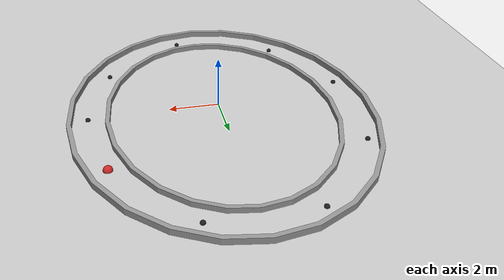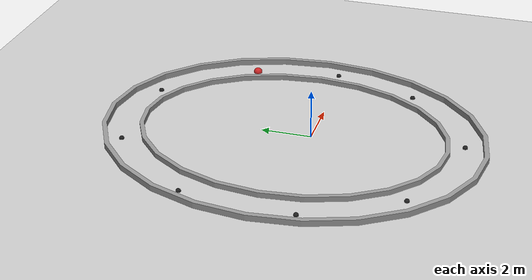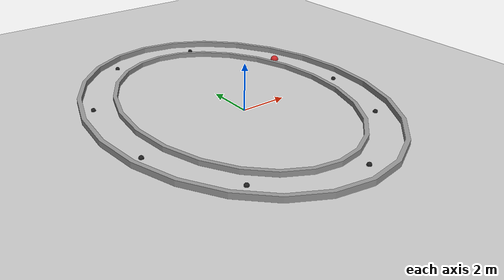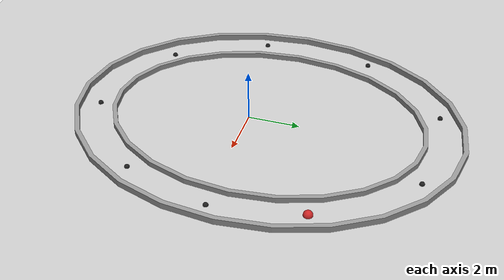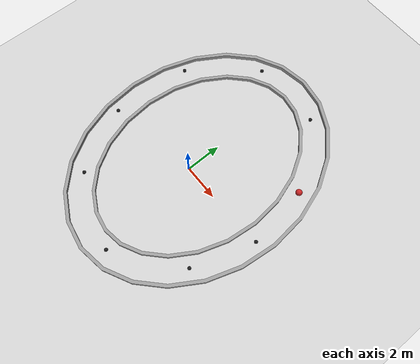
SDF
<sdf version="1.7">
 <world name="default">
  <light name="sun" type="directional">
   <pose>0 0 10 0 -0 0</pose>
   <diffuse>0.8 0.8 0.8 1</diffuse>
   <specular>0.2 0.2 0.2 1</specular>
   <attenuation>
    <range>1000</range>
    <constant>0.9</constant>
    <linear>0.01</linear>
    <quadratic>0.001</quadratic>
   </attenuation>
   <direction>-0.5 0.1 -0.9</direction>
   <spot><inner_angle>0</inner_angle><outer_angle>0</outer_angle><falloff>0</falloff></spot>
  </light>
  <model name="ground_plane">
   <static>1</static>
   <link name="link">
    <collision name="collision">
     <geometry><plane><normal>0 0 1</normal><size>100 100</size></plane></geometry>
     <surface>
      <contact><collide_bitmask>65535</collide_bitmask></contact>
      <friction><ode><mu>100</mu><mu2>50</mu2></ode></friction>
     </surface>
    </collision>
    <visual name="visual">
     <cast_shadows>0</cast_shadows>
     <geometry><plane><normal>0 0 1</normal><size>100 100</size></plane></geometry>
     <material>
      <script><uri>file://media/materials/scripts/gazebo.material</uri><name>Gazebo/Grey</name></script>
     </material>
    </visual>
   </link>
  </model>
  <gravity>0 0 -9.8</gravity>
  <magnetic_field>6e-06 2.3e-05 -4.2e-05</magnetic_field>
  <atmosphere type="adiabatic"/>
  <physics type="ode">
   <max_step_size>0.001</max_step_size>
   <real_time_factor>1</real_time_factor>
   <real_time_update_rate>1000</real_time_update_rate>
  </physics>
  <scene><ambient>0.4 0.4 0.4 1</ambient><background>0.7 0.7 0.7 1</background><shadows>1</shadows></scene>
  <spherical_coordinates>
   <surface_model>EARTH_WGS84</surface_model>
   <latitude_deg>0</latitude_deg>
   <longitude_deg>0</longitude_deg>
   <elevation>0</elevation>
   <heading_deg>0</heading_deg>
  </spherical_coordinates>
  <model name="oval_world">
   <link name="link_0">
    <inertial>
     <mass>1</mass>
     <inertia>
      <ixx>0.166667</ixx>
      <ixy>0</ixy>
      <ixz>0</ixz>
      <iyy>0.166667</iyy>
      <iyz>0</iyz>
      <izz>0.166667</izz>
     </inertia>
    </inertial>
    <visual name="visual">
     <geometry><mesh><uri>/home/tobi/Oval.dae</uri><scale>1 1 1</scale></mesh></geometry>
     <material>
      <lighting>1</lighting>
      <script><uri>file://media/materials/scripts/gazebo.material</uri><name>Gazebo/Grey</name></script>
      <shader type="pixel"/>
     </material>
    </visual>
    <collision name="collision">
     <geometry><mesh><uri>/home/tobi/Oval.dae</uri><scale>1 1 1</scale></mesh></geometry>
     <surface>
      <friction>
       <ode><mu>1</mu><mu2>1</mu2><fdir1>0 0 0</fdir1><slip1>0</slip1><slip2>0</slip2></ode>
       <torsional>
        <coefficient>1</coefficient>
        <patch_radius>0</patch_radius>
        <surface_radius>0</surface_radius>
        <use_patch_radius>1</use_patch_radius>
        <ode><slip>0</slip></ode>
       </torsional>
      </friction>
      <bounce><restitution_coefficient>0</restitution_coefficient><threshold>1e+06</threshold></bounce>
      <contact>
       <collide_without_contact>0</collide_without_contact>
       <collide_without_contact_bitmask>1</collide_without_contact_bitmask>
       <collide_bitmask>1</collide_bitmask>
       <ode>
        <soft_cfm>0</soft_cfm>
        <soft_erp>0.2</soft_erp>
        <kp>1e+13</kp>
        <kd>1</kd>
        <max_vel>0.01</max_vel>
        <min_depth>0</min_depth>
       </ode>
       <bullet>
        <split_impulse>1</split_impulse>
        <split_impulse_penetration_threshold>-0.01</split_impulse_penetration_threshold>
        <soft_cfm>0</soft_cfm>
        <soft_erp>0.2</soft_erp>
        <kp>1e+13</kp>
        <kd>1</kd>
       </bullet>
      </contact>
     </surface>
    </collision>
   </link>
   <static>0</static>
   <pose>0.015497 -0.023011 -3e-06 0 -1e-06 0</pose>
  </model>
  <model name="cp_marker">
   <link name="link">
    <inertial>
     <mass>1</mass>
     <inertia><ixx>0.1</ixx><ixy>0</ixy><ixz>0</ixz><iyy>0.1</iyy><iyz>0</iyz><izz>0.1</izz></inertia>
    </inertial>
    <gravity>0</gravity>
    <visual name="visual">
     <geometry><sphere><radius>0.1</radius></sphere></geometry>
     <material>
      <script><name>Gazebo/Black</name><uri>file://media/materials/scripts/gazebo.material</uri></script>
      <shader type="pixel"/>
     </material>
    </visual>
   </link>
   <static>0</static>
   <pose>4.62117 3.60991 0 0 -0 0</pose>
  </model>
  <model name="cp_marker_0">
   <link name="link">
    <inertial>
     <mass>1</mass>
     <inertia><ixx>0.1</ixx><ixy>0</ixy><ixz>0</ixz><iyy>0.1</iyy><iyz>0</iyz><izz>0.1</izz></inertia>
    </inertial>
    <gravity>0</gravity>
    <visual name="visual">
     <geometry><sphere><radius>0.1</radius></sphere></geometry>
     <material>
      <script><name>Gazebo/Black</name><uri>file://media/materials/scripts/gazebo.material</uri></script>
      <shader type="pixel"/>
     </material>
    </visual>
   </link>
   <static>0</static>
   <pose>1.9297 7.01715 0 0 -0 0</pose>
  </model>
  <model name="cp_marker_1">
   <link name="link">
    <inertial>
     <mass>1</mass>
     <inertia><ixx>0.1</ixx><ixy>0</ixy><ixz>0</ixz><iyy>0.1</iyy><iyz>0</iyz><izz>0.1</izz></inertia>
    </inertial>
    <gravity>0</gravity>
    <visual name="visual">
     <geometry><sphere><radius>0.1</radius></sphere></geometry>
     <material>
      <script><name>Gazebo/Black</name><uri>file://media/materials/scripts/gazebo.material</uri></script>
      <shader type="pixel"/>
     </material>
    </visual>
   </link>
   <static>0</static>
   <pose>-2.10015 7.04338 0 0 -0 0</pose>
  </model>
  <model name="cp_marker_2">
   <link name="link">
    <inertial>
     <mass>1</mass>
     <inertia><ixx>0.1</ixx><ixy>0</ixy><ixz>0</ixz><iyy>0.1</iyy><iyz>0</iyz><izz>0.1</izz></inertia>
    </inertial>
    <gravity>0</gravity>
    <visual name="visual">
     <geometry><sphere><radius>0.1</radius></sphere></geometry>
     <material>
      <script><name>Gazebo/Black</name><uri>file://media/materials/scripts/gazebo.material</uri></script>
      <shader type="pixel"/>
     </material>
    </visual>
   </link>
   <static>0</static>
   <pose>-4.9089 3.60728 0 0 -0 0</pose>
  </model>
  <model name="cp_marker_3">
   <link name="link">
    <inertial>
     <mass>1</mass>
     <inertia><ixx>0.1</ixx><ixy>0</ixy><ixz>0</ixz><iyy>0.1</iyy><iyz>0</iyz><izz>0.1</izz></inertia>
    </inertial>
    <gravity>0</gravity>
    <visual name="visual">
     <geometry><sphere><radius>0.1</radius></sphere></geometry>
     <material>
      <script><name>Gazebo/Black</name><uri>file://media/materials/scripts/gazebo.material</uri></script>
      <shader type="pixel"/>
     </material>
    </visual>
   </link>
   <static>0</static>
   <pose>-5.17984 -0.858133 0 0 -0 0</pose>
  </model>
  <model name="cp_marker_4">
   <link name="link">
    <inertial>
     <mass>1</mass>
     <inertia><ixx>0.1</ixx><ixy>0</ixy><ixz>0</ixz><iyy>0.1</iyy><iyz>0</iyz><izz>0.1</izz></inertia>
    </inertial>
    <gravity>0</gravity>
    <visual name="visual">
     <geometry><sphere><radius>0.1</radius></sphere></geometry>
     <material>
      <script><name>Gazebo/Black</name><uri>file://media/materials/scripts/gazebo.material</uri></script>
      <shader type="pixel"/>
     </material>
    </visual>
   </link>
   <static>0</static>
   <pose>-3.30086 -4.4 0 0 -0 0</pose>
  </model>
  <model name="cp_marker_5">
   <link name="link">
    <inertial>
     <mass>1</mass>
     <inertia><ixx>0.1</ixx><ixy>0</ixy><ixz>0</ixz><iyy>0.1</iyy><iyz>0</iyz><izz>0.1</izz></inertia>
    </inertial>
    <gravity>0</gravity>
    <visual name="visual">
     <geometry><sphere><radius>0.1</radius></sphere></geometry>
     <material>
      <script><name>Gazebo/Black</name><uri>file://media/materials/scripts/gazebo.material</uri></script>
      <shader type="pixel"/>
     </material>
    </visual>
   </link>
   <static>0</static>
   <pose>0.825516 -5.88039 0 0 -0 0</pose>
  </model>
  <model name="cp_marker_6">
   <link name="link">
    <inertial>
     <mass>1</mass>
     <inertia><ixx>0.1</ixx><ixy>0</ixy><ixz>0</ixz><iyy>0.1</iyy><iyz>0</iyz><izz>0.1</izz></inertia>
    </inertial>
    <gravity>0</gravity>
    <visual name="visual">
     <geometry><sphere><radius>0.1</radius></sphere></geometry>
     <material>
      <script><name>Gazebo/Black</name><uri>file://media/materials/scripts/gazebo.material</uri></script>
      <shader type="pixel"/>
     </material>
    </visual>
   </link>
   <static>0</static>
   <pose>4.13615 -3.23932 0 0 -0 0</pose>
  </model>
  <model name="cp_marker_7">
   <link name="link">
    <inertial>
     <mass>1</mass>
     <inertia><ixx>0.1</ixx><ixy>0</ixy><ixz>0</ixz><iyy>0.1</iyy><iyz>0</iyz><izz>0.1</izz></inertia>
    </inertial>
    <gravity>0</gravity>
    <visual name="visual">
     <geometry><sphere><radius>0.1</radius></sphere></geometry>
     <material>
      <script><name>Gazebo/Black</name><uri>file://media/materials/scripts/gazebo.material</uri></script>
      <shader type="pixel"/>
     </material>
    </visual>
   </link>
   <static>0</static>
   <pose>5.19712 0.167058 0 0 -0 0</pose>
  </model>
  <model name="cp">
   <link name="link">
    <inertial>
     <mass>1</mass>
     <inertia><ixx>0.1</ixx><ixy>0</ixy><ixz>0</ixz><iyy>0.1</iyy><iyz>0</iyz><izz>0.1</izz></inertia>
    </inertial>
    <gravity>0</gravity>
    <visual name="visual">
     <geometry><sphere><radius>0.18</radius></sphere></geometry>
     <material>
      <script><name>Gazebo/Red</name><uri>file://media/materials/scripts/gazebo.material</uri></script>
      <shader type="pixel"/>
     </material>
    </visual>
   </link>
   <static>0</static>
   <pose>4.63816 3.62328 0 0 -0 0</pose>
  </model>
 </world>
</sdf>
